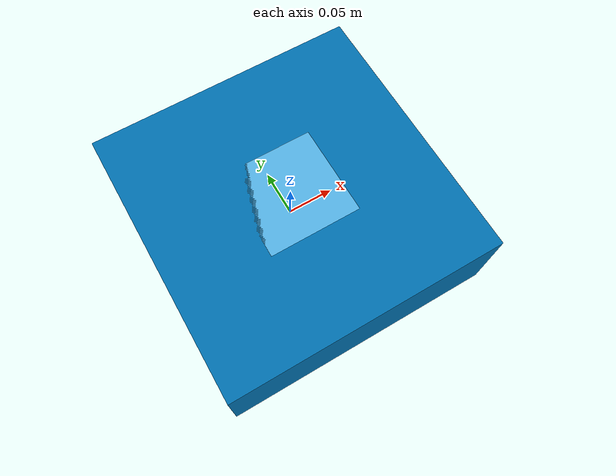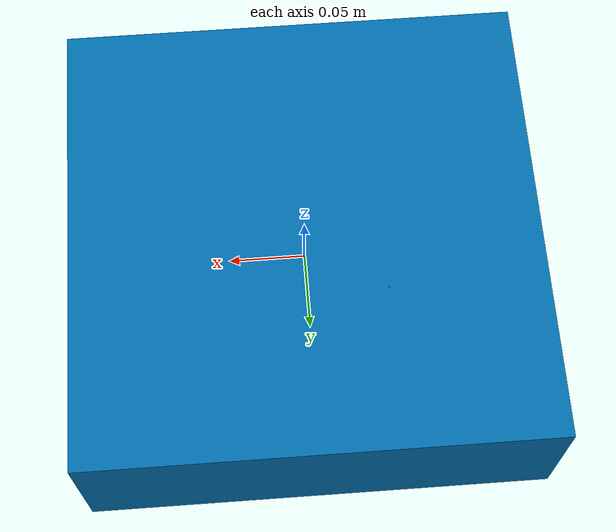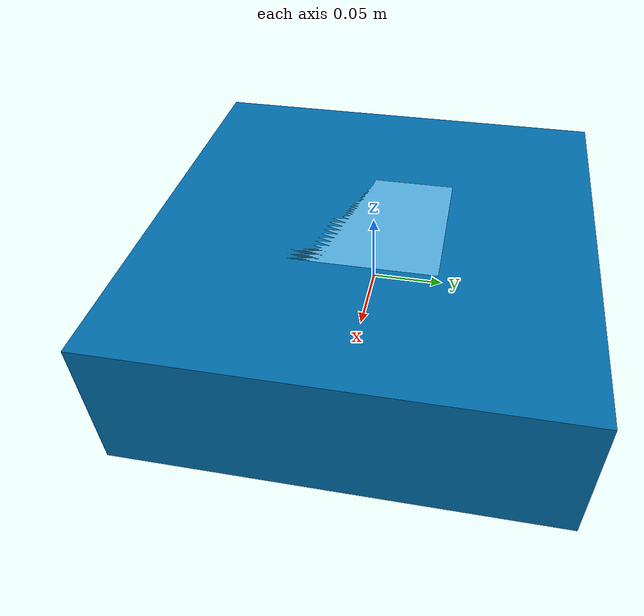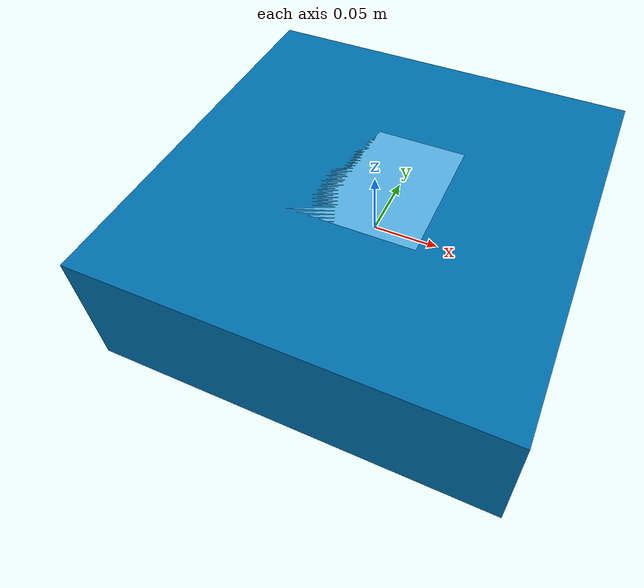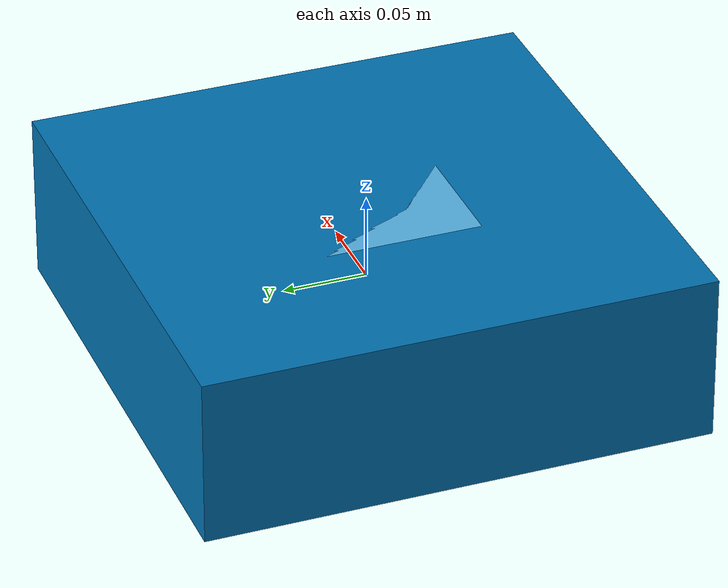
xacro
<?xml version="1.0"?>
<robot xmlns:xacro="http://www.ros.org/wiki/xacro" name="isaac_twin">

  <xacro:include filename="$(find isaac_sim_demo)/urdf/spherical_joint.xacro" />
  <xacro:include filename="$(find isaac_sim_demo)/urdf/link.xacro" />

  <link name="base_link">
    <visual>
      <geometry>
        <box size="0.1 0.1 0"/>
      </geometry>
    </visual>
    <collision>
      <geometry>
        <box size="0.1 0.1 0"/>
      </geometry>
    </collision>
  </link>

  <xacro:spherical_joint prefix="spherical_1" parent="base_link" />

  <joint name="prismatic_joint_1" type="prismatic">
    <parent link="spherical_1_z"/>
    <child link="Drone1"/>
    <origin xyz="0 0 0.0" rpy="0 0 0"/>
    <axis xyz="0 0 1"/>
    <limit lower="0" upper="3" effort="10" velocity="1.0"/>
  </joint>

  <xacro:temp_link name="Drone1" origin_xyz="0 0 0" origin_rpy="0 0 0" size="0.3 0.3 0.1" mass="0.1" />

  <xacro:spherical_joint prefix="spherical_2" parent="Drone1" />

  <joint name="prismatic_joint_2" type="prismatic">
    <parent link="spherical_2_z"/>
    <child link="Drone2"/>
    <origin xyz="0 0 0" rpy="0 0 0"/>
    <axis xyz="0 0 1"/>
    <limit lower="0" upper="3" effort="10" velocity="1.0"/>
  </joint>

  <xacro:temp_link name="Drone2" origin_xyz="0 0 0" origin_rpy="0 0 0" size="0.3 0.3 0.1" mass="0.1" />

  <xacro:spherical_joint prefix="spherical_3" parent="Drone2" />

  <joint name="prismatic_joint_3" type="prismatic">
    <parent link="spherical_3_z"/>
    <child link="Drone3"/>
    <origin xyz="0 0 0" rpy="0 0 0"/>
    <axis xyz="0 0 1"/>
    <limit lower="0" upper="3" effort="10" velocity="1.0"/>
  </joint>

  <xacro:temp_link name="Drone3" origin_xyz="0 0 0" origin_rpy="0 0 0" size="0.3 0.3 0.1" mass="0.1" />

  <xacro:spherical_joint prefix="spherical_4" parent="Drone3" />

  <joint name="prismatic_joint_4" type="prismatic">
    <parent link="spherical_4_z"/>
    <child link="Drone4"/>
    <origin xyz="0 0 0" rpy="0 0 0"/>
    <axis xyz="0 0 1"/>
    <limit lower="0" upper="3" effort="10" velocity="1.0"/>
  </joint>

  <xacro:temp_link name="Drone4" origin_xyz="0 0 0" origin_rpy="0 0 0" size="0.1 0.1 0.1" mass="0.1" />
</robot>

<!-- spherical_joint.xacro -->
<robot xmlns:xacro="http://www.ros.org/wiki/xacro">
  <xacro:include filename="$(find isaac_sim_demo)/urdf/link.xacro" />

  <xacro:macro name="spherical_joint" params="prefix parent">

  <xacro:temp_link name="${prefix}_x" origin_xyz="0 0 0" origin_rpy="0 0 0" size="0.1 0.1 0.1" mass="0.1" />
  <xacro:temp_link name="${prefix}_y" origin_xyz="0 0 0" origin_rpy="0 0 0" size="0.1 0.1 0.1" mass="0.1" />
  <xacro:temp_link name="${prefix}_z" origin_xyz="0 0 0" origin_rpy="0 0 0" size="0.1 0.1 0.1" mass="0.1" />

  <joint name="${prefix}_x" type="revolute">
    <parent link="${parent}"/>
    <child link="${prefix}_x"/>
    <origin xyz="0 0 0.0" rpy="0 0 0"/>
    <axis xyz="1 0 0"/>
    <limit lower="-1.57" upper="1.57" effort="10" velocity="1.0"/>
  </joint>

  <joint name="${prefix}_y" type="revolute">
    <parent link="${prefix}_x"/>
    <child link="${prefix}_y"/>
    <origin xyz="0 0 0" rpy="0 0 0"/>
    <axis xyz="0 1 0"/>
    <limit lower="-1.57" upper="1.57" effort="10" velocity="1.0"/>
  </joint>

  <joint name="${prefix}_z" type="continuous">
    <parent link="${prefix}_y"/>
    <child link="${prefix}_z"/>
    <origin xyz="0 0 0" rpy="0 0 0"/>
    <axis xyz="0 0 1"/>
  </joint>
  </xacro:macro>

 </robot>

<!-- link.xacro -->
<robot xmlns:xacro="http://www.ros.org/wiki/xacro">

  <xacro:macro name="temp_link" params="name origin_xyz origin_rpy size mass ">

    <xacro:property name="dim" value="${size.split(' ')}"/>
    <xacro:property name="L" value="${dim[0]}"/>
    <xacro:property name="W" value="${dim[1]}"/>
    <xacro:property name="H" value="${dim[2]}"/>

    <!-- Calculate inertia tensor components -->
    <xacro:property name="Ixx" value="${(1/12.0) * mass * (W*W + H*H)}"/>
    <xacro:property name="Iyy" value="${(1/12.0) * mass * (L*L + H*H)}"/>
    <xacro:property name="Izz" value="${(1/12.0) * mass * (L*L + W*W)}"/>

    <link name="${name}">
      <inertial>
        <mass value="${mass}" />
        <origin rpy="${origin_rpy}" xyz="${origin_xyz}" />
        <inertia ixx="${Ixx}" ixy="0" ixz="0" iyy="${Iyy}" iyz="0" izz="${Izz}" />
      </inertial>
      <collision>
        <origin rpy="${origin_rpy}" xyz="${origin_xyz}" />
        <geometry>
          <box size="${size}"/>
        </geometry>
      </collision>
      <visual>
        <origin rpy="${origin_rpy}" xyz="${origin_xyz}" />
        <geometry>
          <box size="${size}"/>
        </geometry>
      </visual>
    </link>
  </xacro:macro>

</robot>
